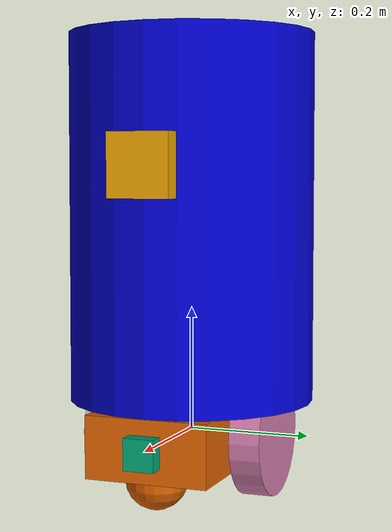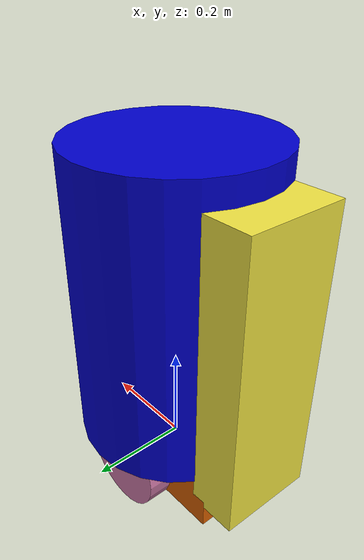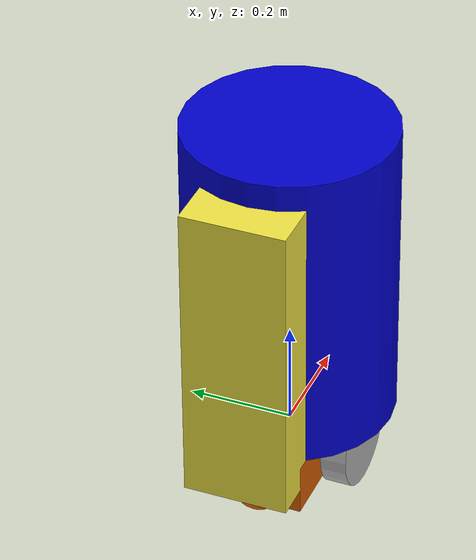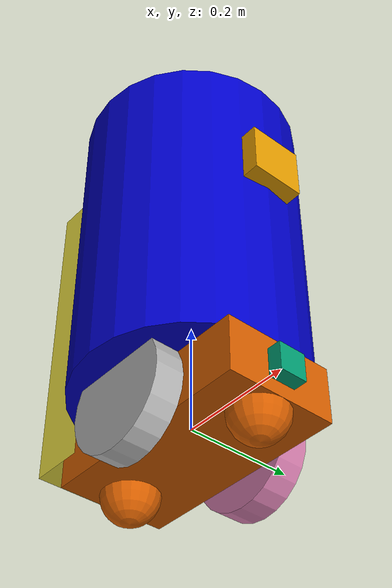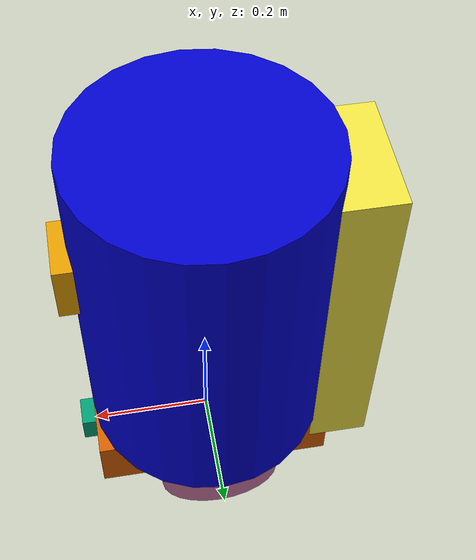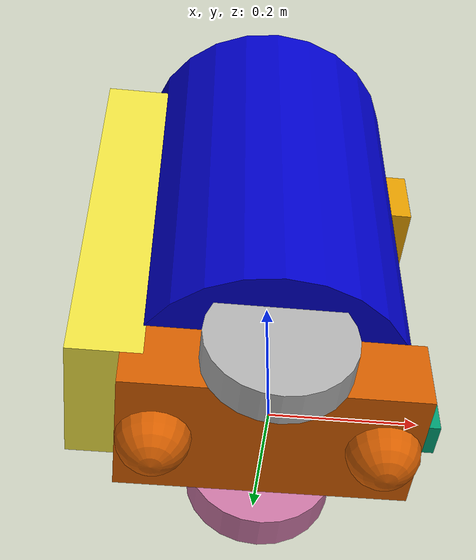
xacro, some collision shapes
<robot name="my_robot" xmlns:xacro="http://www.ros.org/wiki/xacro">

  <xacro:include filename="$(find my_robot)/urdf/my_robot.gazebo" />
  <link name="robot_footprint"></link>

 <joint name="camera_optical_joint" type="fixed">
  <origin xyz="0 0 0" rpy="-1.5705 0 -1.5707"/>
  <parent link="camera"/>
  <child link="camera_link_optical"/>
 </joint>

 <link name="camera_link_optical">
 </link>

  <link name='camera'>
    <inertial>
      <origin xyz="0 0 0" rpy="0 0 0"/>
      <mass value="0.1"/>
      <box_inertia m="0.1" x="0.05" y="0.05" z="0.05"/>
      <inertia
          ixx="1e-6" ixy="0" ixz="0"
          iyy="1e-6" iyz="0"
          izz="1e-6"
      />
    </inertial>

    <visual name='camera_visual'>
      <origin xyz="0 0 0" rpy="0 0 0"/>
      <geometry>
        <box size=".05 .05 .05"/>
      </geometry>
    </visual>

    <collision name='camera_collision'>
      <origin xyz="0 0 0" rpy="0 0 0"/>
      <geometry>
        <box size=".05 .05 .05"/>
      </geometry>
    </collision>
  </link>

 <joint type="fixed" name="camera_joint">
    <origin xyz="0.2 0 0.0" rpy="0 0 0"/>
    <child link="camera"/>
    <parent link="chassis"/>
    <axis xyz="1 0 1"/>
  </joint>

 <joint name="base_to_left_leg" type="fixed">
    <parent link="chassis"/>
    <child link="left_leg"/>
    <origin xyz="-0.22 0 .6"/>
  </joint>

<link name="left_leg">
    <visual>
      <geometry>
        <box size="0.6 .2 .1"/>
      </geometry>

     <origin rpy="0 1.57075 0" xyz="0 0 -0.3"/>
    </visual>
  </link>

 <link name="base_link">
    <visual>
      <geometry>
        <cylinder length="0.6" radius="0.2"/>
      </geometry>
      <material name="blue">
        <color rgba="0 0 .8 1"/>
      </material>
    </visual>
  </link>

<joint name="base_link_to_chassi" type="fixed">
    <parent link="chassis"/>
    <child link="base_link"/>
    <origin xyz="0 0 .35"/>
  </joint>

  <joint name="robot_footprint_joint" type="fixed">
    <origin xyz="0 0 0" rpy="0 0 0" />
    <parent link="robot_footprint"/>
    <child link="chassis" />
  </joint>

  <link name='chassis'>
    <pose>0 0 0.1 0 0 0</pose>

    <inertial>
      <mass value="15.0"/>
      <origin xyz="0.0 0 0" rpy=" 0 0 0"/>
      <inertia
          ixx="0.1" ixy="0" ixz="0"
          iyy="0.1" iyz="0"
          izz="0.1"
      />
    </inertial>

    <collision name='collision'>
      <origin xyz="0 0 0" rpy=" 0 0 0"/>
      <geometry>
        <box size=".4 .2 .1"/>
      </geometry>
    </collision>

    <visual name='chassis_visual'>
      <origin xyz="0 0 0" rpy=" 0 0 0"/>
      <geometry>
        <box size=".4 .2 .1"/>
      </geometry>
    </visual>

    <collision name='back_caster_collision'>
      <origin xyz="-0.15 0 -0.05" rpy=" 0 0 0"/>
      <geometry>
        <sphere radius="0.0499"/>
      </geometry>
    </collision>

    <visual name='back_caster_visual'>
      <origin xyz="-0.15 0 -0.05" rpy=" 0 0 0"/>
      <geometry>
        <sphere radius="0.05"/>
      </geometry>
    </visual>

    <collision name='front_caster_collision'>
      <origin xyz="0.15 0 -0.05" rpy=" 0 0 0"/>
      <geometry>
        <sphere radius="0.0499"/>
      </geometry>
    </collision>

    <visual name='front_caster_visual'>
      <origin xyz="0.15 0 -0.05" rpy=" 0 0 0"/>
      <geometry>
        <sphere radius="0.05"/>
      </geometry>
    </visual>

  </link>

  <link name='left_wheel'>
    <inertial>
      <mass value="5"/>
      <origin xyz="0 0 0" rpy="0 1.5707 1.5707" />
      <inertia
          ixx="0.1" ixy="0" ixz="0"
          iyy="0.1" iyz="0"
          izz="0.1"
      />
    </inertial>

    <collision name='left_wheel_collision'>
      <origin  xyz="0 0 0" rpy="0 1.5707 1.5707"/>
      <geometry>
        <cylinder length="0.05" radius="0.1"/>
      </geometry>
    </collision>

    <visual name='left_wheel_visual'>
      <origin xyz="0 0 0" rpy="0 1.5707 1.5707"/>
      <geometry>
        <cylinder length="0.05" radius="0.1"/>
      </geometry>
    </visual>

  </link>

  <link name='right_wheel'>
    <inertial>
      <mass value="5"/>
      <origin xyz="0 0 0" rpy="0 1.5707 1.5707" />
      <inertia
          ixx="0.1" ixy="0" ixz="0"
          iyy="0.1" iyz="0"
          izz="0.1"
      />
    </inertial>

    <collision name='right_wheel_collision'>
      <origin  xyz="0 0 0" rpy="0 1.5707 1.5707"/>
      <geometry>
        <cylinder length="0.05" radius="0.1"/>
      </geometry>
    </collision>

    <visual name='right_wheel_visual'>
      <origin xyz="0 0 0" rpy="0 1.5707 1.5707"/>
      <geometry>
        <cylinder length="0.05" radius="0.1"/>
      </geometry>
    </visual>

   </link>

   <link name='hokuyo'>
    <inertial>
      <origin xyz="0 0 0" rpy="0 0 0"/>
      <mass value="1e-5"/>
      <inertia
          ixx="1e-6" ixy="0" ixz="0"
          iyy="1e-6" iyz="0"
          izz="1e-6"
      />
    </inertial>

    <visual name='hokuyo_visual'>
      <origin xyz="0 0 0" rpy="0 0 0"/>
      <geometry>
        <mesh filename="package://my_robot/meshes/hokuyo.dae"/>
      </geometry>
    </visual>

    <collision name='hokuyo_collision'>
      <origin xyz="0 0 0" rpy="0 0 0"/>
      <geometry>
        <box size=".1 .1 .1"/>
      </geometry>
    </collision>
  </link>

  <joint type="fixed" name="hokuyo_joint">
    <origin xyz="0.175 0 .085" rpy="0 0 0"/>
    <child link="hokuyo"/>
    <parent link="base_link"/>
    <axis xyz="0 1 0"/>
  </joint>

  <joint name="left_wheel_hinge" type="continuous">
    <origin xyz="0 0.125 0" rpy="0 0 0"/>
    <child link="left_wheel" />
    <parent link="chassis"/>
    <axis xyz="0 1 0" rpy="0 0 0" />
    <limit effort="10000" velocity="1000"/>
    <joint_properties damping="1.0" friction="1.0" />
  </joint>

  <joint name="right_wheel_hinge" type="continuous">
    <origin xyz="0 -0.125 0" rpy="0 0 0"/>
    <child link="right_wheel" />
    <parent link="chassis"/>
    <axis xyz="0 1 0" rpy="0 0 0" />
    <limit effort="10000" velocity="1000"/>
    <joint_properties damping="1.0" friction="1.0" />
  </joint>

</robot>
